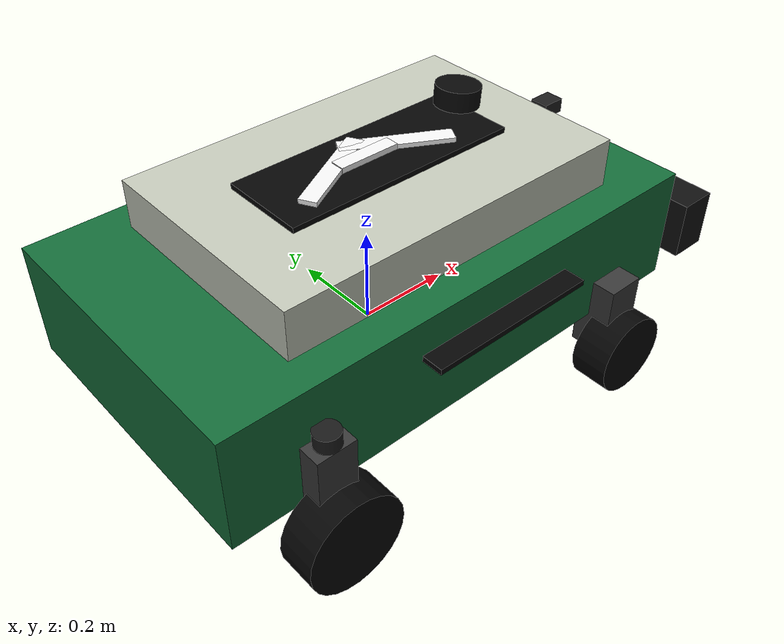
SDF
<?xml version="1.0"?>
<sdf version="1.6">
  <model name="ackermann_4wd_robot">
    <pose>0 0 0 0 0 0</pose>

    <link name="base_link">
      <inertial>
        <pose>-0.15 0 0 0 0 0</pose>
        <mass>36.0</mass>
        <inertia>
          <ixx>1.45</ixx>
          <ixy>0.0</ixy>
          <ixz>0.0</ixz>
          <iyy>2.10</iyy>
          <iyz>0.0</iyz>
          <izz>2.60</izz>
        </inertia>
      </inertial>
      <collision name="body_collision">
        <pose>0 0 0.14 0 0 0</pose>
        <geometry>
          <box>
            <size>1.08 0.62 0.24</size>
          </box>
        </geometry>
        <surface>
          <friction>
            <ode>
              <mu>1.0</mu>
              <mu2>1.0</mu2>
            </ode>
          </friction>
        </surface>
      </collision>
      <visual name="body_visual">
        <pose>0 0 0.14 0 0 0</pose>
        <geometry>
          <box>
            <size>1.08 0.62 0.24</size>
          </box>
        </geometry>
        <material>
          <ambient>0.05 0.26 0.16 1</ambient>
          <diffuse>0.08 0.42 0.22 1</diffuse>
          <specular>0.10 0.10 0.10 1</specular>
        </material>
      </visual>
      <visual name="top_cover">
        <pose>0.02 0 0.31 0 0 0</pose>
        <geometry>
          <box>
            <size>0.76 0.48 0.10</size>
          </box>
        </geometry>
        <material>
          <ambient>0.76 0.78 0.72 1</ambient>
          <diffuse>0.76 0.78 0.72 1</diffuse>
        </material>
      </visual>
      <visual name="ackermann_top_label">
        <pose>0.02 0 0.365 0 0 0</pose>
        <geometry>
          <box>
            <size>0.50 0.18 0.012</size>
          </box>
        </geometry>
        <material>
          <ambient>0.02 0.02 0.02 1</ambient>
          <diffuse>0.02 0.02 0.02 1</diffuse>
        </material>
      </visual>
      <visual name="ackermann_top_mark_left">
        <pose>-0.075 0.0 0.374 0 0 0.50</pose>
        <geometry>
          <box>
            <size>0.22 0.035 0.012</size>
          </box>
        </geometry>
        <material>
          <ambient>0.95 0.95 0.95 1</ambient>
          <diffuse>0.95 0.95 0.95 1</diffuse>
        </material>
      </visual>
      <visual name="ackermann_top_mark_right">
        <pose>0.075 0.0 0.374 0 0 -0.50</pose>
        <geometry>
          <box>
            <size>0.22 0.035 0.012</size>
          </box>
        </geometry>
        <material>
          <ambient>0.95 0.95 0.95 1</ambient>
          <diffuse>0.95 0.95 0.95 1</diffuse>
        </material>
      </visual>
      <visual name="ackermann_top_mark_crossbar">
        <pose>0.0 0.0 0.376 0 0 0</pose>
        <geometry>
          <box>
            <size>0.13 0.030 0.012</size>
          </box>
        </geometry>
        <material>
          <ambient>0.95 0.95 0.95 1</ambient>
          <diffuse>0.95 0.95 0.95 1</diffuse>
        </material>
      </visual>
      <visual name="left_ackermann_badge">
        <pose>0.04 0.315 0.18 1.5708 0 0</pose>
        <geometry>
          <box>
            <size>0.36 0.012 0.08</size>
          </box>
        </geometry>
        <material>
          <ambient>0.02 0.02 0.02 1</ambient>
          <diffuse>0.02 0.02 0.02 1</diffuse>
        </material>
      </visual>
      <visual name="right_ackermann_badge">
        <pose>0.04 -0.315 0.18 1.5708 0 0</pose>
        <geometry>
          <box>
            <size>0.36 0.012 0.08</size>
          </box>
        </geometry>
        <material>
          <ambient>0.02 0.02 0.02 1</ambient>
          <diffuse>0.02 0.02 0.02 1</diffuse>
        </material>
      </visual>
      <visual name="front_bumper">
        <pose>0.58 0 0.14 0 0 0</pose>
        <geometry>
          <box>
            <size>0.08 0.70 0.12</size>
          </box>
        </geometry>
        <material>
          <ambient>0.04 0.04 0.04 1</ambient>
          <diffuse>0.06 0.06 0.06 1</diffuse>
        </material>
      </visual>
      <visual name="cutting_disc">
        <pose>-0.02 0 -0.035 0 0 0</pose>
        <geometry>
          <cylinder>
            <radius>0.25</radius>
            <length>0.025</length>
          </cylinder>
        </geometry>
        <material>
          <ambient>0.14 0.14 0.14 1</ambient>
          <diffuse>0.16 0.16 0.16 1</diffuse>
        </material>
      </visual>
    </link>

    <link name="front_left_steer_link">
      <pose>0.36 0.32 0.02 0 0 0</pose>
      <inertial>
        <mass>0.7</mass>
        <inertia>
          <ixx>0.002</ixx>
          <ixy>0.0</ixy>
          <ixz>0.0</ixz>
          <iyy>0.002</iyy>
          <iyz>0.0</iyz>
          <izz>0.002</izz>
        </inertia>
      </inertial>
      <visual name="upright">
        <geometry>
          <box>
            <size>0.08 0.08 0.16</size>
          </box>
        </geometry>
        <material>
          <ambient>0.18 0.18 0.18 1</ambient>
          <diffuse>0.22 0.22 0.22 1</diffuse>
        </material>
      </visual>
    </link>

    <link name="front_right_steer_link">
      <pose>0.36 -0.32 0.02 0 0 0</pose>
      <inertial>
        <mass>0.7</mass>
        <inertia>
          <ixx>0.002</ixx>
          <ixy>0.0</ixy>
          <ixz>0.0</ixz>
          <iyy>0.002</iyy>
          <iyz>0.0</iyz>
          <izz>0.002</izz>
        </inertia>
      </inertial>
      <visual name="upright">
        <geometry>
          <box>
            <size>0.08 0.08 0.16</size>
          </box>
        </geometry>
        <material>
          <ambient>0.18 0.18 0.18 1</ambient>
          <diffuse>0.22 0.22 0.22 1</diffuse>
        </material>
      </visual>
    </link>

    <link name="front_left_wheel">
      <pose>0.36 0.36 -0.055 0 0 0</pose>
      <inertial>
        <mass>1.6</mass>
        <inertia>
          <ixx>0.008</ixx>
          <ixy>0.0</ixy>
          <ixz>0.0</ixz>
          <iyy>0.008</iyy>
          <iyz>0.0</iyz>
          <izz>0.012</izz>
        </inertia>
      </inertial>
      <collision name="collision">
        <pose>0 0 0 -1.5708 0 0</pose>
        <geometry>
          <cylinder>
            <radius>0.085</radius>
            <length>0.08</length>
          </cylinder>
        </geometry>
        <surface>
          <friction>
            <ode>
              <mu>1.5</mu>
              <mu2>1.5</mu2>
              <slip1>0.0</slip1>
              <slip2>0.0</slip2>
            </ode>
          </friction>
        </surface>
      </collision>
      <visual name="visual">
        <pose>0 0 0 -1.5708 0 0</pose>
        <geometry>
          <cylinder>
            <radius>0.085</radius>
            <length>0.08</length>
          </cylinder>
        </geometry>
        <material>
          <ambient>0.02 0.02 0.02 1</ambient>
          <diffuse>0.02 0.02 0.02 1</diffuse>
        </material>
      </visual>
    </link>

    <link name="front_right_wheel">
      <pose>0.36 -0.36 -0.055 0 0 0</pose>
      <inertial>
        <mass>1.6</mass>
        <inertia>
          <ixx>0.008</ixx>
          <ixy>0.0</ixy>
          <ixz>0.0</ixz>
          <iyy>0.008</iyy>
          <iyz>0.0</iyz>
          <izz>0.012</izz>
        </inertia>
      </inertial>
      <collision name="collision">
        <pose>0 0 0 -1.5708 0 0</pose>
        <geometry>
          <cylinder>
            <radius>0.085</radius>
            <length>0.08</length>
          </cylinder>
        </geometry>
        <surface>
          <friction>
            <ode>
              <mu>1.5</mu>
              <mu2>1.5</mu2>
              <slip1>0.0</slip1>
              <slip2>0.0</slip2>
            </ode>
          </friction>
        </surface>
      </collision>
      <visual name="visual">
        <pose>0 0 0 -1.5708 0 0</pose>
        <geometry>
          <cylinder>
            <radius>0.085</radius>
            <length>0.08</length>
          </cylinder>
        </geometry>
        <material>
          <ambient>0.02 0.02 0.02 1</ambient>
          <diffuse>0.02 0.02 0.02 1</diffuse>
        </material>
      </visual>
    </link>

    <link name="rear_left_suspension_link">
      <pose>-0.36 0.36 -0.02 0 0 0</pose>
      <inertial>
        <mass>0.8</mass>
        <inertia>
          <ixx>0.003</ixx>
          <ixy>0.0</ixy>
          <ixz>0.0</ixz>
          <iyy>0.003</iyy>
          <iyz>0.0</iyz>
          <izz>0.003</izz>
        </inertia>
      </inertial>
      <visual name="suspension_upright">
        <pose>0 -0.03 0.08 0 0 0</pose>
        <geometry>
          <box>
            <size>0.08 0.05 0.18</size>
          </box>
        </geometry>
        <material>
          <ambient>0.18 0.18 0.18 1</ambient>
          <diffuse>0.22 0.22 0.22 1</diffuse>
        </material>
      </visual>
      <visual name="spring_body">
        <pose>0 -0.03 0.10 0 0 0</pose>
        <geometry>
          <cylinder>
            <radius>0.025</radius>
            <length>0.20</length>
          </cylinder>
        </geometry>
        <material>
          <ambient>0.08 0.08 0.08 1</ambient>
          <diffuse>0.10 0.10 0.10 1</diffuse>
        </material>
      </visual>
    </link>

    <link name="rear_right_suspension_link">
      <pose>-0.36 -0.36 -0.02 0 0 0</pose>
      <inertial>
        <mass>0.8</mass>
        <inertia>
          <ixx>0.003</ixx>
          <ixy>0.0</ixy>
          <ixz>0.0</ixz>
          <iyy>0.003</iyy>
          <iyz>0.0</iyz>
          <izz>0.003</izz>
        </inertia>
      </inertial>
      <visual name="suspension_upright">
        <pose>0 0.03 0.08 0 0 0</pose>
        <geometry>
          <box>
            <size>0.08 0.05 0.18</size>
          </box>
        </geometry>
        <material>
          <ambient>0.18 0.18 0.18 1</ambient>
          <diffuse>0.22 0.22 0.22 1</diffuse>
        </material>
      </visual>
      <visual name="spring_body">
        <pose>0 0.03 0.10 0 0 0</pose>
        <geometry>
          <cylinder>
            <radius>0.025</radius>
            <length>0.20</length>
          </cylinder>
        </geometry>
        <material>
          <ambient>0.08 0.08 0.08 1</ambient>
          <diffuse>0.10 0.10 0.10 1</diffuse>
        </material>
      </visual>
    </link>

    <link name="rear_left_wheel">
      <pose>-0.36 0.36 -0.04 0 0 0</pose>
      <inertial>
        <mass>1.6</mass>
        <inertia>
          <ixx>0.008</ixx>
          <ixy>0.0</ixy>
          <ixz>0.0</ixz>
          <iyy>0.008</iyy>
          <iyz>0.0</iyz>
          <izz>0.012</izz>
        </inertia>
      </inertial>
      <collision name="collision">
        <pose>0 0 0 -1.5708 0 0</pose>
        <geometry>
          <cylinder>
            <radius>0.10</radius>
            <length>0.08</length>
          </cylinder>
        </geometry>
        <surface>
          <friction>
            <ode>
              <mu>1.5</mu>
              <mu2>1.5</mu2>
              <slip1>0.0</slip1>
              <slip2>0.0</slip2>
            </ode>
          </friction>
        </surface>
      </collision>
      <visual name="visual">
        <pose>0 0 0 -1.5708 0 0</pose>
        <geometry>
          <cylinder>
            <radius>0.10</radius>
            <length>0.08</length>
          </cylinder>
        </geometry>
        <material>
          <ambient>0.02 0.02 0.02 1</ambient>
          <diffuse>0.02 0.02 0.02 1</diffuse>
        </material>
      </visual>
    </link>

    <link name="rear_right_wheel">
      <pose>-0.36 -0.36 -0.04 0 0 0</pose>
      <inertial>
        <mass>1.6</mass>
        <inertia>
          <ixx>0.008</ixx>
          <ixy>0.0</ixy>
          <ixz>0.0</ixz>
          <iyy>0.008</iyy>
          <iyz>0.0</iyz>
          <izz>0.012</izz>
        </inertia>
      </inertial>
      <collision name="collision">
        <pose>0 0 0 -1.5708 0 0</pose>
        <geometry>
          <cylinder>
            <radius>0.10</radius>
            <length>0.08</length>
          </cylinder>
        </geometry>
        <surface>
          <friction>
            <ode>
              <mu>1.5</mu>
              <mu2>1.5</mu2>
              <slip1>0.0</slip1>
              <slip2>0.0</slip2>
            </ode>
          </friction>
        </surface>
      </collision>
      <visual name="visual">
        <pose>0 0 0 -1.5708 0 0</pose>
        <geometry>
          <cylinder>
            <radius>0.10</radius>
            <length>0.08</length>
          </cylinder>
        </geometry>
        <material>
          <ambient>0.02 0.02 0.02 1</ambient>
          <diffuse>0.02 0.02 0.02 1</diffuse>
        </material>
      </visual>
    </link>

    <link name="camera_link">
      <pose>0.50 0.0 0.30 0 0 0</pose>
      <inertial>
        <mass>0.08</mass>
        <inertia>
          <ixx>0.0002</ixx>
          <ixy>0.0</ixy>
          <ixz>0.0</ixz>
          <iyy>0.0002</iyy>
          <iyz>0.0</iyz>
          <izz>0.0002</izz>
        </inertia>
      </inertial>
      <visual name="camera_housing">
        <geometry>
          <box>
            <size>0.05 0.04 0.03</size>
          </box>
        </geometry>
        <material>
          <ambient>0.10 0.10 0.10 1</ambient>
          <diffuse>0.12 0.12 0.12 1</diffuse>
        </material>
      </visual>
      <sensor type="ray" name="front_tof">
        <always_on>true</always_on>
        <update_rate>20</update_rate>
        <visualize>false</visualize>
        <ray>
          <scan>
            <horizontal>
              <samples>100</samples>
              <resolution>1.0</resolution>
              <min_angle>-0.785</min_angle>
              <max_angle>0.785</max_angle>
            </horizontal>
            <vertical>
              <samples>80</samples>
              <resolution>1.0</resolution>
              <min_angle>-0.611</min_angle>
              <max_angle>0.611</max_angle>
            </vertical>
          </scan>
          <range>
            <min>0.05</min>
            <max>2.5</max>
            <resolution>0.05</resolution>
          </range>
        </ray>
        <plugin name="front_tof_controller" filename="libgazebo_ros_ray_sensor.so">
          <ros>
            <namespace>/mower_tof</namespace>
            <remapping>~/out:=points</remapping>
          </ros>
          <output_type>sensor_msgs/PointCloud2</output_type>
          <frame_name>camera_link</frame_name>
        </plugin>
      </sensor>
    </link>

    <link name="lidar_link">
      <pose>0.23 0.0 0.42 0 0.0872665 0</pose>
      <inertial>
        <mass>0.18</mass>
        <inertia>
          <ixx>0.0003</ixx>
          <ixy>0.0</ixy>
          <ixz>0.0</ixz>
          <iyy>0.0003</iyy>
          <iyz>0.0</iyz>
          <izz>0.0003</izz>
        </inertia>
      </inertial>
      <visual name="lidar_housing">
        <geometry>
          <cylinder>
            <radius>0.045</radius>
            <length>0.04</length>
          </cylinder>
        </geometry>
        <material>
          <ambient>0.02 0.02 0.02 1</ambient>
          <diffuse>0.03 0.03 0.03 1</diffuse>
        </material>
      </visual>
      <sensor type="ray" name="front_lidar">
        <always_on>true</always_on>
        <update_rate>10</update_rate>
        <visualize>false</visualize>
        <ray>
          <scan>
            <horizontal>
              <samples>720</samples>
              <resolution>1.0</resolution>
              <min_angle>-3.14159</min_angle>
              <max_angle>3.14159</max_angle>
            </horizontal>
            <vertical>
              <samples>16</samples>
              <resolution>1.0</resolution>
              <min_angle>0.0</min_angle>
              <max_angle>0.3</max_angle>
            </vertical>
          </scan>
          <range>
            <min>0.10</min>
            <max>12.0</max>
            <resolution>0.01</resolution>
          </range>
          <noise>
            <type>gaussian</type>
            <mean>0.0</mean>
            <stddev>0.01</stddev>
          </noise>
        </ray>
        <plugin name="front_lidar_controller" filename="libgazebo_ros_ray_sensor.so">
          <ros>
            <namespace>/</namespace>
            <remapping>~/out:=sensor_lidar</remapping>
          </ros>
          <output_type>sensor_msgs/PointCloud2</output_type>
          <frame_name>lidar_link</frame_name>
        </plugin>
      </sensor>
    </link>

    <joint name="front_left_steer_joint" type="revolute">
      <parent>base_link</parent>
      <child>front_left_steer_link</child>
      <axis>
        <xyz>0 0 1</xyz>
        <limit>
          <lower>-1.57</lower>
          <upper>1.57</upper>
        </limit>
        <dynamics>
          <damping>0.4</damping>
        </dynamics>
      </axis>
    </joint>
    <joint name="front_right_steer_joint" type="revolute">
      <parent>base_link</parent>
      <child>front_right_steer_link</child>
      <axis>
        <xyz>0 0 1</xyz>
        <limit>
          <lower>-1.57</lower>
          <upper>1.57</upper>
        </limit>
        <dynamics>
          <damping>0.4</damping>
        </dynamics>
      </axis>
    </joint>
    <joint name="front_left_wheel_joint" type="revolute">
      <parent>front_left_steer_link</parent>
      <child>front_left_wheel</child>
      <axis>
        <xyz>0 1 0</xyz>
        <limit>
          <lower>-1e16</lower>
          <upper>1e16</upper>
        </limit>
      </axis>
    </joint>
    <joint name="front_right_wheel_joint" type="revolute">
      <parent>front_right_steer_link</parent>
      <child>front_right_wheel</child>
      <axis>
        <xyz>0 1 0</xyz>
        <limit>
          <lower>-1e16</lower>
          <upper>1e16</upper>
        </limit>
      </axis>
    </joint>
    <joint name="rear_left_suspension_joint" type="prismatic">
      <parent>base_link</parent>
      <child>rear_left_suspension_link</child>
      <axis>
        <xyz>0 0 1</xyz>
        <use_parent_model_frame>true</use_parent_model_frame>
        <limit>
          <lower>-0.04</lower>
          <upper>0.03</upper>
        </limit>
        <dynamics>
          <damping>180.0</damping>
          <spring_reference>0.0</spring_reference>
          <spring_stiffness>8000.0</spring_stiffness>
        </dynamics>
      </axis>
    </joint>
    <joint name="rear_right_suspension_joint" type="prismatic">
      <parent>base_link</parent>
      <child>rear_right_suspension_link</child>
      <axis>
        <xyz>0 0 1</xyz>
        <use_parent_model_frame>true</use_parent_model_frame>
        <limit>
          <lower>-0.04</lower>
          <upper>0.03</upper>
        </limit>
        <dynamics>
          <damping>180.0</damping>
          <spring_reference>0.0</spring_reference>
          <spring_stiffness>8000.0</spring_stiffness>
        </dynamics>
      </axis>
    </joint>
    <joint name="rear_left_wheel_joint" type="revolute">
      <parent>rear_left_suspension_link</parent>
      <child>rear_left_wheel</child>
      <axis>
        <xyz>0 1 0</xyz>
        <limit>
          <lower>-1e16</lower>
          <upper>1e16</upper>
        </limit>
      </axis>
    </joint>
    <joint name="rear_right_wheel_joint" type="revolute">
      <parent>rear_right_suspension_link</parent>
      <child>rear_right_wheel</child>
      <axis>
        <xyz>0 1 0</xyz>
        <limit>
          <lower>-1e16</lower>
          <upper>1e16</upper>
        </limit>
      </axis>
    </joint>
    <joint name="camera_joint" type="fixed">
      <parent>base_link</parent>
      <child>camera_link</child>
    </joint>
    <joint name="lidar_joint" type="fixed">
      <parent>base_link</parent>
      <child>lidar_link</child>
    </joint>

    <plugin name="ackermann_4wd_drive" filename="libackermann_4wd_drive_plugin.so">
      <ros>
        <namespace>/</namespace>
      </ros>
      <cmd_vel_topic>cmd_vel</cmd_vel_topic>
      <odom_topic>odom</odom_topic>
      <wheel_velocity_cmd_topic>wheel_velocity_cmds</wheel_velocity_cmd_topic>
      <odom_frame>odom</odom_frame>
      <base_frame>base_link</base_frame>
      <wheel_base>0.72</wheel_base>
      <wheel_track>0.72</wheel_track>
      <front_wheel_radius>0.085</front_wheel_radius>
      <rear_wheel_radius>0.10</rear_wheel_radius>
      <rear_axle_to_base>0.36</rear_axle_to_base>
      <max_steer_angle>1.4</max_steer_angle>
      <max_wheel_torque>8.0</max_wheel_torque>
      <max_wheel_acceleration>8.0</max_wheel_acceleration>
      <max_steer_rate>2.0</max_steer_rate>
      <max_steer_torque>12.0</max_steer_torque>
      <steer_position_gain>6.0</steer_position_gain>
      <command_timeout>1.0</command_timeout>
      <publish_odom_tf>true</publish_odom_tf>
    </plugin>
  </model>
</sdf>
